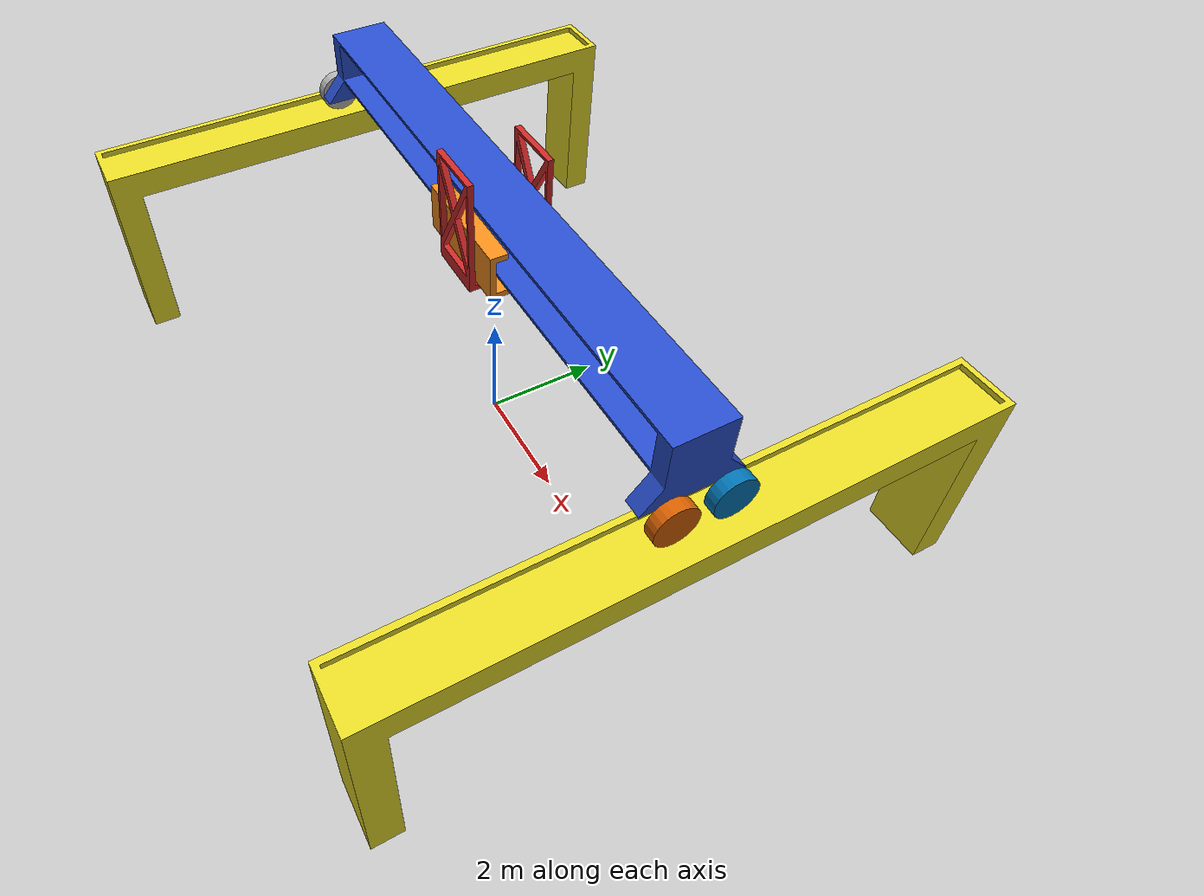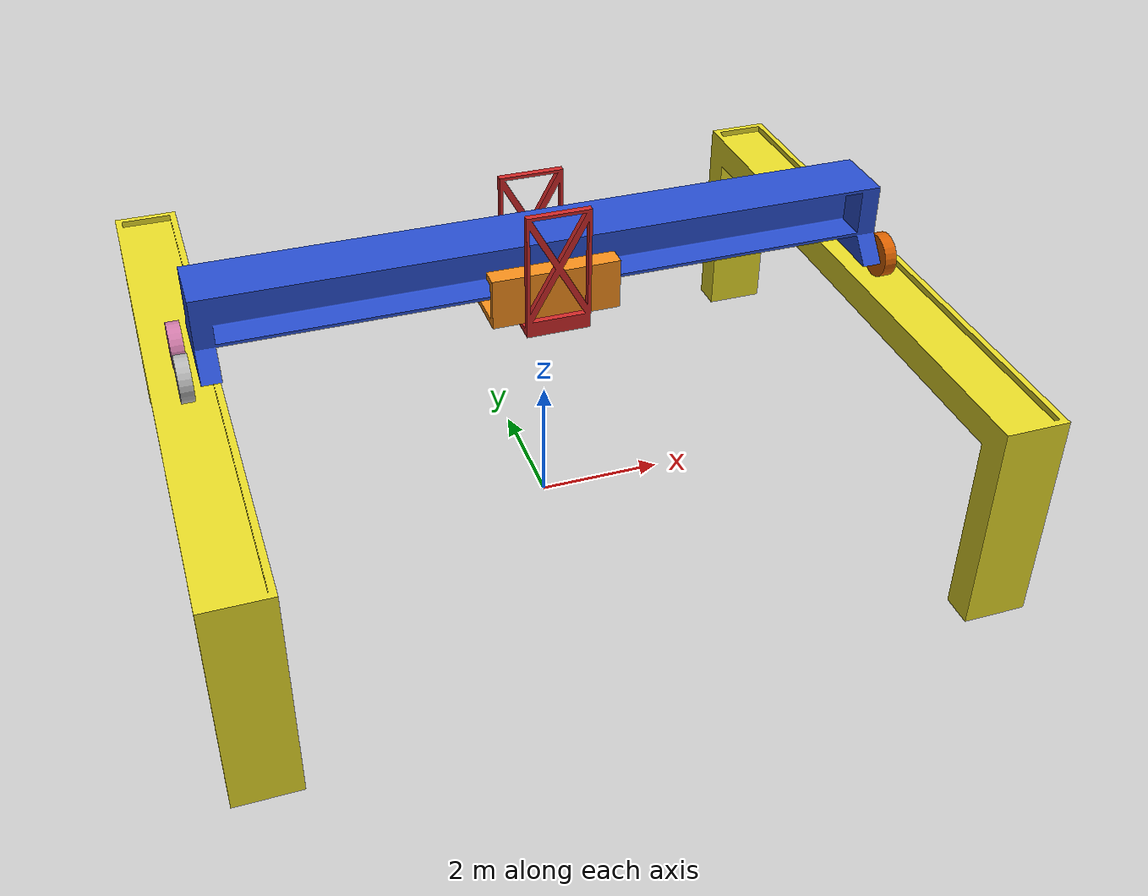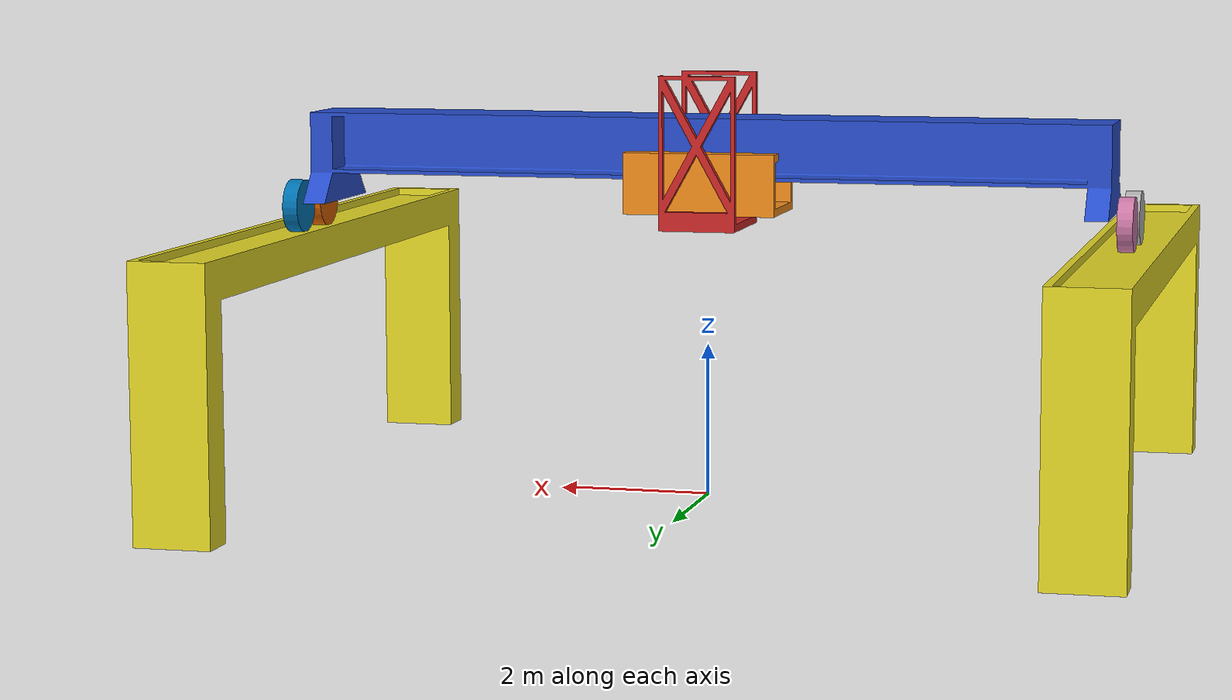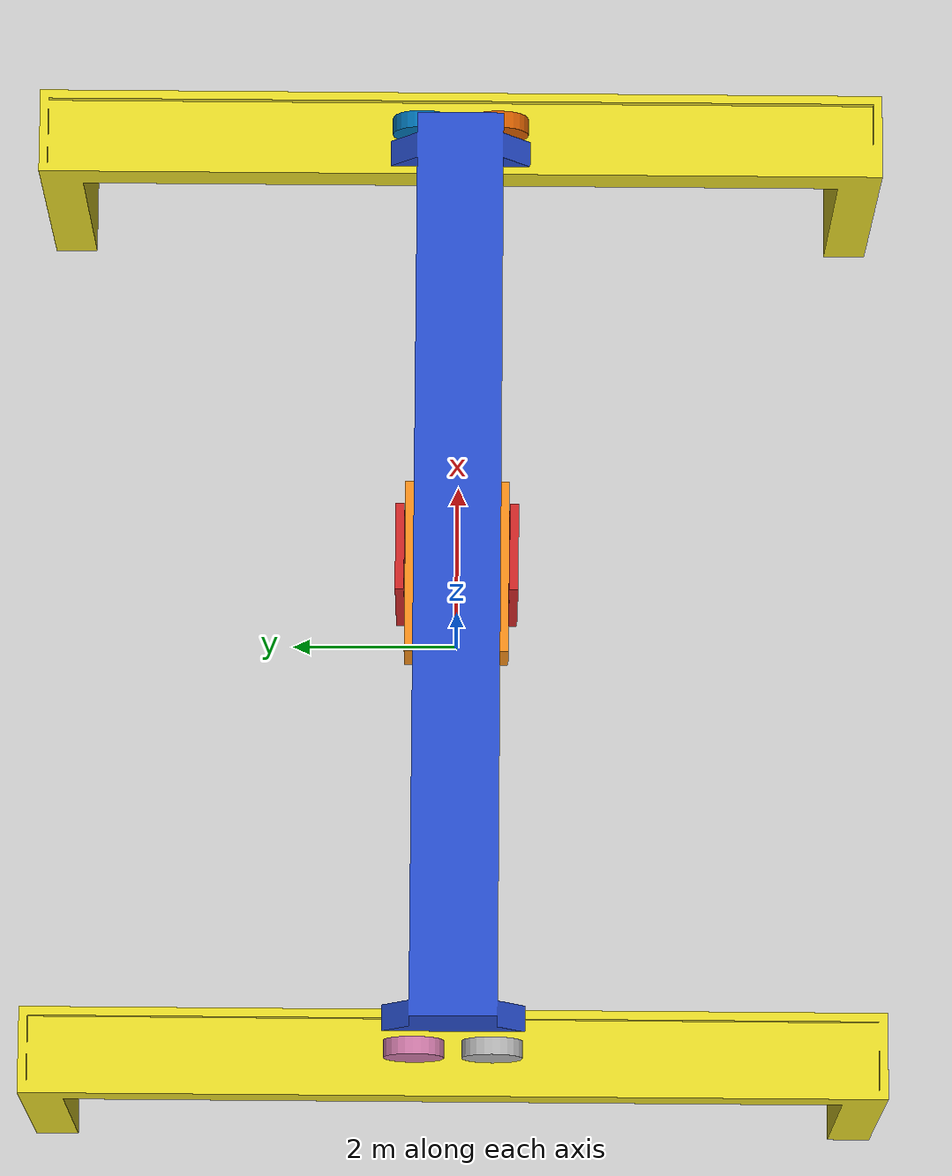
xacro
<?xml version="1.0" encoding="UTF-8"?>

<robot name="gantry_crane" xmlns:xacro="http://www.ros.org/wiki/xacro">

  <xacro:include filename="$(find gantry_robot_hvl)/urdf/gantry_v1.urdf.gazebo" />

  <link name="world"/>

  <joint name="world_joint_left" type="fixed">
    <parent link="world"/>
    <child link="left_support_arch_link" />
    <origin xyz="5.5 0 0" rpy="0 0 0"/>
  </joint>

  <joint name="world_joint_right" type="fixed">
    <parent link="world"/>
    <child link="right_support_arch_link" />
    <origin xyz="-5.5 0 0" rpy="0 0 0"/>
  </joint>

  <!--Support_arch left side -->
  <xacro:property name="support_arch_length" value="10" />
  <xacro:property name="support_arch_width" value="1" />
  <xacro:property name="support_arch_height" value="3.3" />
  <xacro:property name="support_arch_density" value="1" />
  <xacro:property name="support_arch_mass" value="${support_arch_length*support_arch_height*support_arch_width*support_arch_density}" />

  <link name="left_support_arch_link">
    <visual>
      <origin  rpy="0 0 0" xyz="0 0 0"/>
      <geometry>
        <mesh filename="package://gantry_robot_hvl/meshes/support_arch_v2.stl" scale="0.001 0.001 0.001"/>
      </geometry>
    </visual>
    <collision>
      <origin xyz="0 0 1.75" rpy="0 0 1.57057"/>
      <geometry>
        <box size="${support_arch_length} ${support_arch_width} ${support_arch_height}"/>
      </geometry>
    </collision>
    <inertial>
      <origin xyz="0 0 1.75" rpy="0 0 1.57057"/>
      <mass value="${support_arch_mass}"/>
      <inertia
        ixx="${support_arch_mass*(pow(support_arch_height,2) + pow(support_arch_width,2))/12}" ixy="0.0" ixz="0.0"
        iyy="${support_arch_mass*(pow(support_arch_length,2) + pow(support_arch_height,2))/12}" iyz="0.0"
        izz="${support_arch_mass*(pow(support_arch_length,2) + pow(support_arch_width,2))/12}"/>
      </inertial>
  </link>

    <!--Support_arch right side -->
  <link name="right_support_arch_link">
      <visual>
        <origin xyz="0 0 0" rpy="0 0 0"/>
        <geometry>
          <mesh filename="package://gantry_robot_hvl/meshes/support_arch_v2.stl" scale="0.001 0.001 0.001"/>
        </geometry>
      </visual>
      <collision>
        <origin xyz="0 0 1.75" rpy="0 0 1.57057"/>
        <geometry>
          <box size="${support_arch_length} ${support_arch_width} ${support_arch_height}"/>
        </geometry>
      </collision>
      <inertial>
        <origin xyz="0 0 1.75" rpy="0 0 1.57057"/>
        <mass value="${support_arch_mass}"/>
        <inertia
          ixx="${support_arch_mass*(pow(support_arch_height,2) + pow(support_arch_width,2))/12}" ixy="0.0" ixz="0.0"
          iyy="${support_arch_mass*(pow(support_arch_length,2) + pow(support_arch_height,2))/12}" iyz="0.0"
          izz="${support_arch_mass*(pow(support_arch_length,2) + pow(support_arch_width,2))/12}"/>
        </inertial>
  </link>

      <!-- =================================H-beam=================================== -->
      <xacro:property name="h_beam_length" value="10" />
      <xacro:property name="h_beam_width" value="0.1" />
      <xacro:property name="h_beam_height" value="0.75" />
      <xacro:property name="h_beam_density" value="1" />
      <xacro:property name="h_beam_mass" value="${h_beam_length*h_beam_height*h_beam_width*h_beam_density}" />

  <link name="h_beam_link">
        <visual>
          <origin xyz="-5.5 -0.5 0.5" rpy="0 0 0"/>
          <geometry>
            <mesh filename="package://gantry_robot_hvl/meshes/H-Beam_v3.stl" scale="1 1 1"/>
          </geometry>
        </visual>
        <collision>
          <origin xyz="-5.5 0 0.1" rpy="0 0 0"/>
          <geometry>
            <box size="${h_beam_length} ${h_beam_width} ${h_beam_height}"/>
          </geometry>
        </collision>
        <inertial>
          <origin xyz="-5.5 0 0.1" rpy="0 0 0"/>
          <mass value="${h_beam_mass}"/>
          <inertia
            ixx="${h_beam_mass*(pow(h_beam_height,2) + pow(h_beam_width,2))/12}" ixy="0.0" ixz="0.0"
            iyy="${h_beam_mass*(pow(h_beam_length,2) + pow(h_beam_height,2))/12}" iyz="0.0"
            izz="${h_beam_mass*(pow(h_beam_length,2) + pow(h_beam_width,2))/12}"/>
          </inertial>
  </link>

        <!-- ====================== H-Beam left joint ============================== -->
  <joint name="h_beam_joint_left" type="prismatic">
          <origin xyz="0 0 4.5" rpy="0 0 0"/>
          <parent link="left_support_arch_link"/>
          <child link="h_beam_link"/>
          <axis xyz="0 1 0" rpy="0 0 0"/>

          <calibration rising="0.0"/>
          <dynamics damping="0.0" friction="1.0"/>
          <limit effort="30" velocity="1.0" lower="-4" upper="4" />
          <safety_controller k_velocity="10" k_position="15" soft_lower_limit="-3.5" soft_upper_limit="3.5" />
  </joint>

        <!-- H-beam wheels -->
        <xacro:property name="wheel_width" value="0.2" />
        <xacro:property name="wheel_radius" value="0.35" />

  <link name="front_left_wheel">
          <visual name="flw">
            <origin xyz="0 0 0 " rpy="0 0 0"/>
            <geometry>
              <cylinder radius="${wheel_radius}" length="${wheel_width}"/>
            </geometry>
          </visual>
          <collision>
            <origin xyz="0 0 0" rpy="0 0 0"/>
            <geometry>
              <cylinder radius="${wheel_radius}" length="${wheel_width}"/>
            </geometry>
          </collision>

  </link>

  <joint type="fixed" name="front_left_wheel_joint">
          <origin xyz="0 0.45 -0.75" rpy="1.57057 0 1.57057"/>
          <child link="front_left_wheel"/>
          <parent link="h_beam_link"/>
        </joint>

  <link name="back_left_wheel">
          <visual name="blw">
            <origin xyz="0 0 0 " rpy="0 0 0"/>
            <geometry>
              <cylinder radius="${wheel_radius}" length="${wheel_width}"/>
            </geometry>
          </visual>
          <collision>
            <origin xyz="0 0 0 " rpy="0 0 0"/>
            <geometry>
              <cylinder radius="${wheel_radius}" length="${wheel_width}"/>
            </geometry>
          </collision>
  </link>

  <joint type="fixed" name="back_left_wheel_joint">
          <origin xyz="0 -0.45 -0.75" rpy="1.57057 0 1.57057"/>
          <child link="back_left_wheel"/>
          <parent link="h_beam_link"/>
  </joint>

  <link name="front_right_wheel">
          <visual name="frw">
            <origin xyz="0 0 0 " rpy="0 0 0"/>
            <geometry>
              <cylinder radius="${wheel_radius}" length="${wheel_width}"/>
            </geometry>
          </visual>
          <collision>
            <origin xyz="0 0 0 " rpy="0 0 0"/>
            <geometry>
              <cylinder radius="${wheel_radius}" length="${wheel_width}"/>
            </geometry>
          </collision>
  </link>

  <joint type="fixed" name="front_right_wheel_joint">
          <origin xyz="-11 0.45 -0.75" rpy="1.57057 0 1.57057"/>
          <child link="front_right_wheel"/>
          <parent link="h_beam_link"/>
  </joint>

  <link name="back_right_wheel">
          <visual name="brw">
            <origin xyz="0 0 0 " rpy="0 0 0"/>
            <geometry>
              <cylinder radius="${wheel_radius}" length="${wheel_width}"/>
            </geometry>
          </visual>
          <collision>
            <origin xyz="0 0 0" rpy="0 0 0"/>
            <geometry>
              <cylinder radius="${wheel_radius}" length="${wheel_width}"/>
            </geometry>
          </collision>
  </link>

  <joint type="fixed" name="back_right_wheel_joint">
          <origin xyz="-11 -0.45 -0.75" rpy="1.57057 0 1.57057"/>
          <child link="back_right_wheel"/>
          <parent link="h_beam_link"/>
  </joint>

        <!-- ==============Trolly================ -->

        <xacro:property name="trolly_length" value="1.2" />
        <xacro:property name="trolly_width" value="2" />
        <xacro:property name="trolly_height" value="0.1" />
        <xacro:property name="trolly_density" value="1" />
        <xacro:property name="trolly_mass" value="${trolly_length*trolly_height*trolly_width*trolly_density}" />

  <link name="trolly_link">
          <visual>
            <origin xyz="0 0 0" rpy="0 0 0"/>
            <geometry>
              <mesh filename="package://gantry_robot_hvl/meshes/trolly_v3.stl" scale="0.01 0.01 0.01"/>
            </geometry>
          </visual>
          <collision>
            <origin xyz="0 0 0" rpy="0 0 0"/>
            <geometry>
              <box size="${trolly_length} ${trolly_width} ${trolly_height}"/>
            </geometry>
          </collision>
          <inertial>
            <origin xyz="0 0 0" rpy="0 0 0"/>
            <mass value="${trolly_mass}"/>
            <inertia
              ixx="${trolly_mass*(pow(trolly_height,2) + pow(trolly_width,2))/12}" ixy="0.0" ixz="0.0"
              iyy="${trolly_mass*(pow(trolly_length,2) + pow(trolly_height,2))/12}" iyz="0.0"
              izz="${trolly_mass*(pow(trolly_length,2) + pow(trolly_width,2))/12}"/>
            </inertial>
  </link>

  <joint name="trolly_joint" type="prismatic">
            <origin xyz="-5.5 0 -0.75" rpy="0 0 1.57057"/>
            <parent link="h_beam_link"/>
            <child link="trolly_link"/>
            <axis xyz="0 1 0" rpy="0 0 0"/>

            <calibration rising="0.0"/>
            <dynamics damping="0.0" friction="1.0"/>
            <limit effort="30" velocity="1.0" lower="-4" upper="4" />
            <safety_controller k_velocity="10" k_position="15" soft_lower_limit="-3.5" soft_upper_limit="3.5" />
  </joint>

          <!-- ========================= Crane ======================-->

          <xacro:property name="crane_length" value="1.4" />
          <xacro:property name="crane_width" value="1" />
          <xacro:property name="crane_height" value="0.1" />
          <xacro:property name="crane_density" value="1" />
          <xacro:property name="crane_mass" value="${crane_length*crane_height*crane_width*crane_density}" />

  <link name="crane_link">
            <visual>
              <origin xyz="0 0 0" rpy="1.57057 0 0"/>
              <geometry>
                <mesh filename="package://gantry_robot_hvl/meshes/crane_v3.stl" scale="0.01 0.01 0.01"/>
              </geometry>
            </visual>
            <collision>
              <origin xyz="0 0 0.1" rpy="0 0 0"/>
              <geometry>
                <box size="${crane_length} ${crane_width} ${crane_height}"/>
              </geometry>
            </collision>
            <inertial>
              <origin xyz="0 0 0.1" rpy="1.57057 0 0"/>
              <mass value="${crane_mass}"/>
              <inertia
                ixx="${crane_mass*(pow(crane_height,2) + pow(crane_width,2))/12}" ixy="0.0" ixz="0.0"
                iyy="${crane_mass*(pow(crane_length,2) + pow(crane_height,2))/12}" iyz="0.0"
                izz="${crane_mass*(pow(crane_length,2) + pow(crane_width,2))/12}"/>
              </inertial>
  </link>

  <joint name="crane_joint" type="prismatic">
              <origin xyz="0 0 0" rpy="0 0 0"/>
              <parent link="trolly_link"/>
              <child link="crane_link"/>
              <axis xyz="0 0 1" rpy="0 0 0"/>

              <calibration rising="0.0"/>
              <dynamics damping="0.0" friction="10.0"/>
              <limit effort="30" velocity="1.0" lower="-1.6" upper="0" />
              <safety_controller k_velocity="10" k_position="15" soft_lower_limit="-1.5" soft_upper_limit="0" />
  </joint>

            <!-- ========================transmission============================ -->

  <transmission name="h_beam_transmission">
              <type>transmission_interface/SimpleTransmission</type>
              <joint name="h_beam_joint_left">
                <hardwareInterface>hardware_interface/PositionJointInterface</hardwareInterface>
              </joint>
              <actuator name="h_beam_motor">
                <hardwareInterface>hardware_interface/PositionJointInterface</hardwareInterface>
                <mechanicalReduction>1</mechanicalReduction>
              </actuator>
  </transmission>

  <transmission name="trolly_trasmission">
              <type>transmission_interface/SimpleTransmission</type>
              <joint name="trolly_joint">
                <hardwareInterface>hardware_interface/PositionJointInterface</hardwareInterface>
              </joint>
              <actuator name="trolly_motor">
                <hardwareInterface>hardware_interface/PositionJointInterface</hardwareInterface>
                <mechanicalReduction>1</mechanicalReduction>
              </actuator>
  </transmission>

  <transmission name="crane_transmission">
              <type>transmission_interface/SimpleTransmission</type>
              <joint name="crane_joint">
                <hardwareInterface>hardware_interface/PositionJointInterface</hardwareInterface>
              </joint>
              <actuator name="crane_motor">
                <hardwareInterface>hardware_interface/PositionJointInterface</hardwareInterface>
                <mechanicalReduction>1</mechanicalReduction>
              </actuator>
  </transmission>

</robot>
